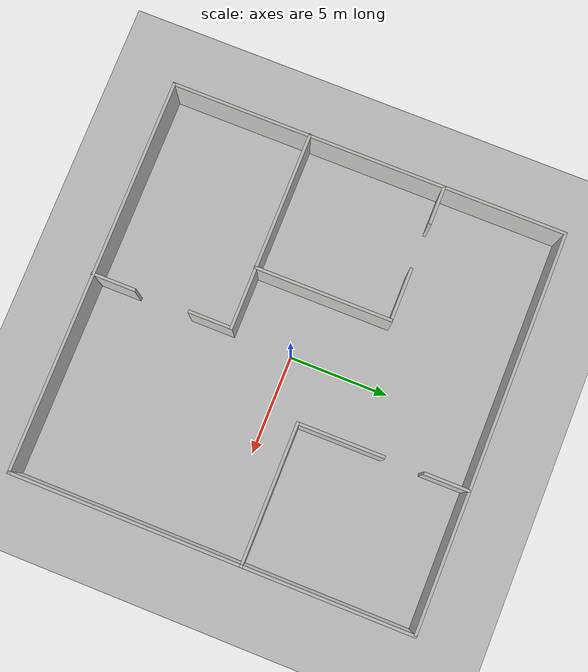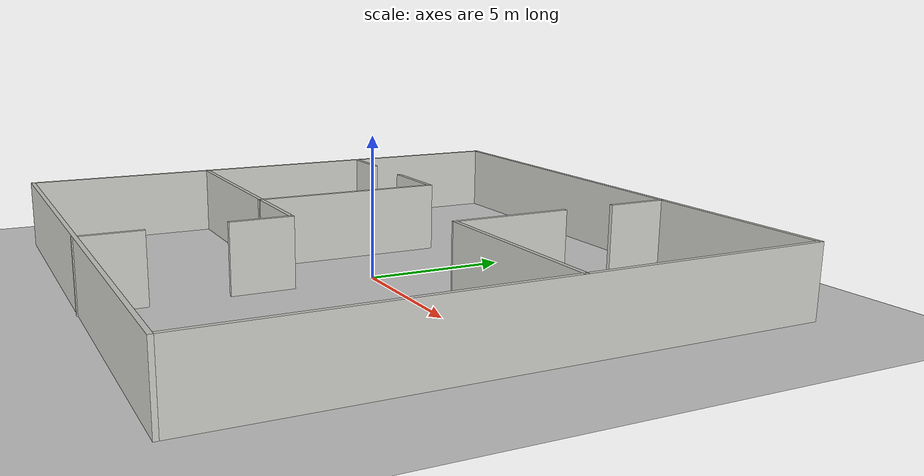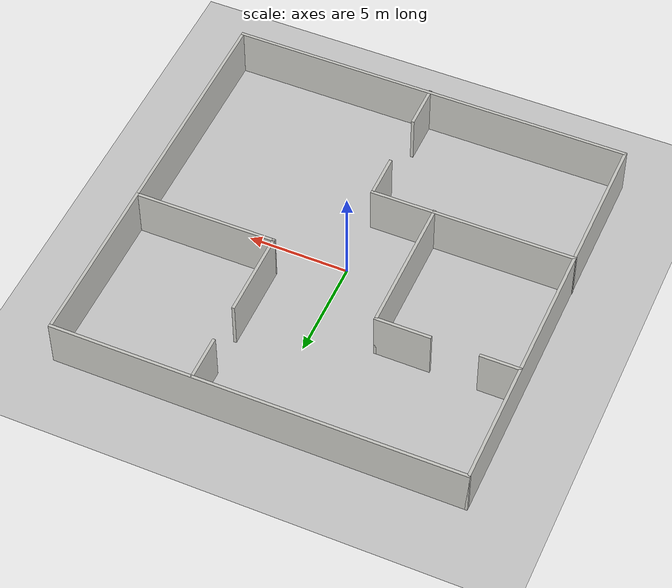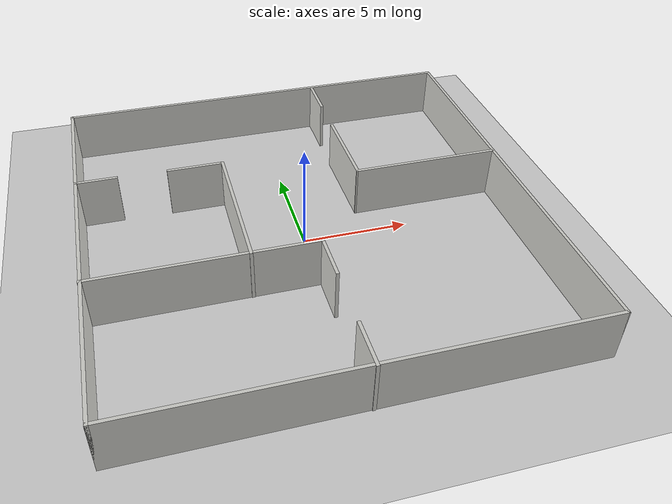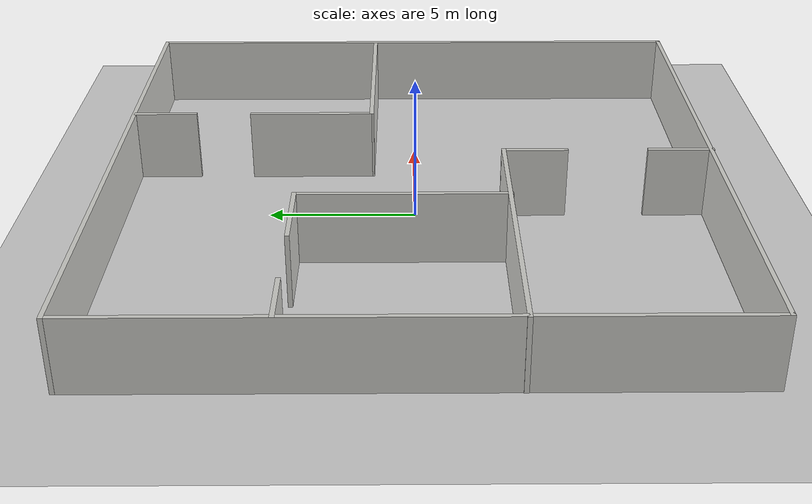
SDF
<sdf version="1.7">
 <world name="default">
  <light name="sun" type="directional">
   <pose>0 0 10 0 -0 0</pose>
   <diffuse>0.8 0.8 0.8 1</diffuse>
   <specular>0.2 0.2 0.2 1</specular>
   <attenuation>
    <range>1000</range>
    <constant>0.9</constant>
    <linear>0.01</linear>
    <quadratic>0.001</quadratic>
   </attenuation>
   <direction>-0.5 0.1 -0.9</direction>
   <spot><inner_angle>0</inner_angle><outer_angle>0</outer_angle><falloff>0</falloff></spot>
  </light>
  <model name="ground_plane">
   <static>1</static>
   <link name="link">
    <collision name="collision">
     <geometry><plane><normal>0 0 1</normal><size>100 100</size></plane></geometry>
     <surface><friction><ode><mu>100</mu><mu2>50</mu2></ode></friction></surface>
    </collision>
    <visual name="visual">
     <cast_shadows>0</cast_shadows>
     <geometry><plane><normal>0 0 1</normal><size>100 100</size></plane></geometry>
     <material>
      <script><uri>file://media/materials/scripts/gazebo.material</uri><name>Gazebo/Grey</name></script>
     </material>
    </visual>
   </link>
  </model>
  <gravity>0 0 -9.8</gravity>
  <magnetic_field>6e-06 2.3e-05 -4.2e-05</magnetic_field>
  <atmosphere type="adiabatic"/>
  <physics type="ode">
   <max_step_size>0.001</max_step_size>
   <real_time_factor>1</real_time_factor>
   <real_time_update_rate>1000</real_time_update_rate>
  </physics>
  <scene><ambient>0.4 0.4 0.4 1</ambient><background>0.7 0.7 0.7 1</background><shadows>1</shadows></scene>
  <spherical_coordinates>
   <surface_model>EARTH_WGS84</surface_model>
   <latitude_deg>0</latitude_deg>
   <longitude_deg>0</longitude_deg>
   <elevation>0</elevation>
   <heading_deg>0</heading_deg>
  </spherical_coordinates>
  <model name="simple_house">
   <link name="Wall_0">
    <collision name="Wall_0_Collision">
     <geometry><box><size>20.15 0.15 2.5</size></box></geometry>
     <pose>0 0 1.25 0 -0 0</pose>
    </collision>
    <visual name="Wall_0_Visual">
     <pose>0 0 1.25 0 -0 0</pose>
     <geometry><box><size>20.15 0.15 2.5</size></box></geometry>
     <material>
      <script><uri>file://media/materials/scripts/gazebo.material</uri><name>Gazebo/CeilingTiled</name></script>
      <ambient>1 1 1 1</ambient>
     </material>
     <meta><layer>0</layer></meta>
    </visual>
    <pose>0.011 10.019 0 0 -0 0</pose>
   </link>
   <link name="Wall_11">
    <collision name="Wall_11_Collision">
     <geometry><box><size>2.25 0.15 2.5</size></box></geometry>
     <pose>0 0 1.25 0 -0 0</pose>
    </collision>
    <visual name="Wall_11_Visual">
     <pose>0 0 1.25 0 -0 0</pose>
     <geometry><box><size>2.25 0.15 2.5</size></box></geometry>
     <material>
      <script><uri>file://media/materials/scripts/gazebo.material</uri><name>Gazebo/CeilingTiled</name></script>
      <ambient>1 1 1 1</ambient>
     </material>
     <meta><layer>0</layer></meta>
    </visual>
    <pose>0.011 -4.031 0 0 -0 -1.5708</pose>
   </link>
   <link name="Wall_13">
    <collision name="Wall_13_Collision">
     <geometry><box><size>2.25 0.15 2.5</size></box></geometry>
     <pose>0 0 1.25 0 -0 0</pose>
    </collision>
    <visual name="Wall_13_Visual">
     <pose>0 0 1.25 0 -0 0</pose>
     <geometry><box><size>2.25 0.15 2.5</size></box></geometry>
     <material>
      <script><uri>file://media/materials/scripts/gazebo.material</uri><name>Gazebo/CeilingTiled</name></script>
      <ambient>1 1 1 1</ambient>
     </material>
     <meta><layer>0</layer></meta>
    </visual>
    <pose>0.011 -8.969 0 0 -0 1.5708</pose>
   </link>
   <link name="Wall_16">
    <collision name="Wall_16_Collision">
     <geometry><box><size>2.25 0.15 2.5</size></box></geometry>
     <pose>0 0 1.25 0 -0 0</pose>
    </collision>
    <visual name="Wall_16_Visual">
     <pose>0 0 1.25 0 -0 0</pose>
     <geometry><box><size>2.25 0.15 2.5</size></box></geometry>
     <material>
      <script><uri>file://media/materials/scripts/gazebo.material</uri><name>Gazebo/CeilingTiled</name></script>
      <ambient>1 1 1 1</ambient>
     </material>
     <meta><layer>0</layer></meta>
    </visual>
    <pose>3.011 8.908 0 0 -0 -1.5708</pose>
   </link>
   <link name="Wall_18">
    <collision name="Wall_18_Collision">
     <geometry><box><size>7.15 0.15 2.5</size></box></geometry>
     <pose>0 0 1.25 0 -0 0</pose>
    </collision>
    <visual name="Wall_18_Visual">
     <pose>0 0 1.25 0 -0 0</pose>
     <geometry><box><size>7.15 0.15 2.5</size></box></geometry>
     <material>
      <script><uri>file://media/materials/scripts/gazebo.material</uri><name>Gazebo/CeilingTiled</name></script>
      <ambient>1 1 1 1</ambient>
     </material>
     <meta><layer>0</layer></meta>
    </visual>
    <pose>6.511 1.538 0 0 -0 3.14159</pose>
   </link>
   <link name="Wall_2">
    <collision name="Wall_2_Collision">
     <geometry><box><size>20.15 0.15 2.5</size></box></geometry>
     <pose>0 0 1.25 0 -0 0</pose>
    </collision>
    <visual name="Wall_2_Visual">
     <pose>0 0 1.25 0 -0 0</pose>
     <geometry><box><size>20.15 0.15 2.5</size></box></geometry>
     <material>
      <script><uri>file://media/materials/scripts/gazebo.material</uri><name>Gazebo/CeilingTiled</name></script>
      <ambient>1 1 1 1</ambient>
     </material>
     <meta><layer>0</layer></meta>
    </visual>
    <pose>0.011 -9.981 0 0 -0 0</pose>
   </link>
   <link name="Wall_20">
    <collision name="Wall_20_Collision">
     <geometry><box><size>4.40943 0.15 2.5</size></box></geometry>
     <pose>0 0 1.25 0 -0 0</pose>
    </collision>
    <visual name="Wall_20_Visual">
     <pose>0 0 1.25 0 -0 0</pose>
     <geometry><box><size>4.40943 0.15 2.5</size></box></geometry>
     <material>
      <script><uri>file://media/materials/scripts/gazebo.material</uri><name>Gazebo/CeilingTiled</name></script>
      <ambient>1 1 1 1</ambient>
     </material>
     <meta><layer>0</layer></meta>
    </visual>
    <pose>3.00335 3.6677 0 0 -0 -1.5672</pose>
   </link>
   <link name="Wall_22">
    <collision name="Wall_22_Collision">
     <geometry><box><size>2 0.15 2.5</size></box></geometry>
     <pose>0 0 1.25 0 -0 0</pose>
    </collision>
    <visual name="Wall_22_Visual">
     <pose>0 0 1.25 0 -0 0</pose>
     <geometry><box><size>2 0.15 2.5</size></box></geometry>
     <material>
      <script><uri>file://media/materials/scripts/gazebo.material</uri><name>Gazebo/CeilingTiled</name></script>
      <ambient>1 1 1 1</ambient>
     </material>
     <meta><layer>0</layer></meta>
    </visual>
    <pose>-9.05947 3.88992 0 0 -0 0</pose>
   </link>
   <link name="Wall_24">
    <collision name="Wall_24_Collision">
     <geometry><box><size>2.75 0.15 2.5</size></box></geometry>
     <pose>0 0 1.25 0 -0 0</pose>
    </collision>
    <visual name="Wall_24_Visual">
     <pose>0 0 1.25 0 -0 0</pose>
     <geometry><box><size>2.75 0.15 2.5</size></box></geometry>
     <material>
      <script><uri>file://media/materials/scripts/gazebo.material</uri><name>Gazebo/CeilingTiled</name></script>
      <ambient>1 1 1 1</ambient>
     </material>
     <meta><layer>0</layer></meta>
    </visual>
    <pose>-4.38127 3.8434 0 0 -0 0</pose>
   </link>
   <link name="Wall_25">
    <collision name="Wall_25_Collision">
     <geometry><box><size>7 0.15 2.5</size></box></geometry>
     <pose>0 0 1.25 0 -0 0</pose>
    </collision>
    <visual name="Wall_25_Visual">
     <pose>0 0 1.25 0 -0 0</pose>
     <geometry><box><size>7 0.15 2.5</size></box></geometry>
     <material>
      <script><uri>file://media/materials/scripts/gazebo.material</uri><name>Gazebo/CeilingTiled</name></script>
      <ambient>1 1 1 1</ambient>
     </material>
     <meta><layer>0</layer></meta>
    </visual>
    <pose>-3.08127 0.418399 0 0 -0 -1.5708</pose>
   </link>
   <link name="Wall_5">
    <collision name="Wall_5_Collision">
     <geometry><box><size>20.15 0.15 2.5</size></box></geometry>
     <pose>0 0 1.25 0 -0 0</pose>
    </collision>
    <visual name="Wall_5_Visual">
     <pose>0 0 1.25 0 -0 0</pose>
     <geometry><box><size>20.15 0.15 2.5</size></box></geometry>
     <material>
      <script><uri>file://media/materials/scripts/gazebo.material</uri><name>Gazebo/CeilingTiled</name></script>
      <ambient>1 1 1 1</ambient>
     </material>
     <meta><layer>0</layer></meta>
    </visual>
    <pose>-9.989 0.019 0 0 -0 -1.5708</pose>
   </link>
   <link name="Wall_7">
    <collision name="Wall_7_Collision">
     <geometry><box><size>20.15 0.15 2.5</size></box></geometry>
     <pose>0 0 1.25 0 -0 0</pose>
    </collision>
    <visual name="Wall_7_Visual">
     <pose>0 0 1.25 0 -0 0</pose>
     <geometry><box><size>20.15 0.15 2.5</size></box></geometry>
     <material>
      <script><uri>file://media/materials/scripts/gazebo.material</uri><name>Gazebo/CeilingTiled</name></script>
      <ambient>1 1 1 1</ambient>
     </material>
     <meta><layer>0</layer></meta>
    </visual>
    <pose>10.011 0.019 0 0 -0 -1.5708</pose>
   </link>
   <link name="Wall_9">
    <collision name="Wall_9_Collision">
     <geometry><box><size>10.172 0.15 2.5</size></box></geometry>
     <pose>0 0 1.25 0 -0 0</pose>
    </collision>
    <visual name="Wall_9_Visual">
     <pose>0 0 1.25 0 -0 0</pose>
     <geometry><box><size>10.172 0.15 2.5</size></box></geometry>
     <material>
      <script><uri>file://media/materials/scripts/gazebo.material</uri><name>Gazebo/CeilingTiled</name></script>
      <ambient>1 1 1 1</ambient>
     </material>
     <meta><layer>0</layer></meta>
    </visual>
    <pose>-5 -2.981 0 0 -0 0</pose>
   </link>
   <static>1</static>
  </model>
  <plugin name="gazebo_occupancy_map" filename="libgazebo_2Dmap_plugin.so">
   <map_resolution>0.05</map_resolution>
   <map_height>0.3</map_height>
   <map_size_x>10</map_size_x>
   <map_size_y>10</map_size_y>
   <init_robot_x>0</init_robot_x>
   <init_robot_y>0</init_robot_y>
  </plugin>
 </world>
</sdf>
